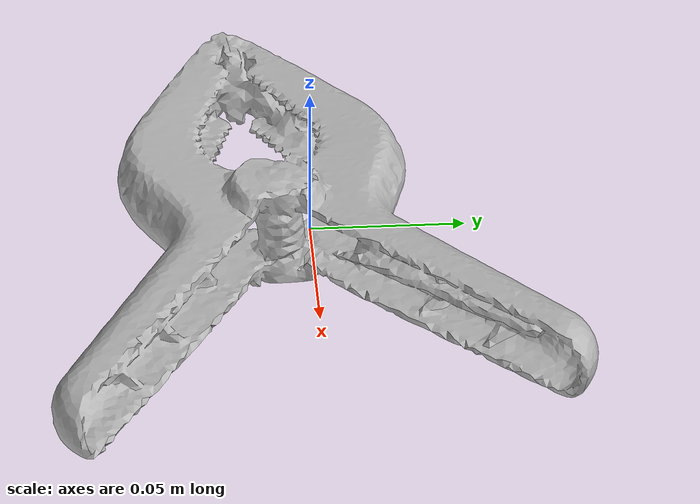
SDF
<?xml version="1.0" ?>
<sdf version="1.7">
<!--
This SDF file was automatically generated using a template modified
and authored by Jinjian Li. The moment of interia is not supposed to be changed.
-->
    <model name="obj_000020">
      <pose>0.0 0.0 0.0 0.0 0.0 0.0</pose>
      <link name="link">
        <inertial>
          <inertia>
           <ixx>0.00026745897752038125</ixx>
           <ixy>-2.3143490508574467e-05</ixy>
           <ixz>2.502884806658289e-07</ixz>
           <iyy>0.0004481439128038987</iyy>
           <iyz>-1.8155869915770907e-06</iyz>
           <izz>0.0006910495380677301</izz>
          </inertia>
          <mass>0.18185593560718089</mass>
        </inertial>
        <collision name="collision">
          <geometry>
            <mesh>
             <uri>obj_000020.obj</uri>
             <scale>1 1 1</scale>
            </mesh>
          </geometry>
        </collision>

        <visual name="visual">
          <geometry>
            <mesh>
             <uri>obj_000020.obj</uri>
             <scale>1 1 1</scale>
            </mesh>
          </geometry>
        </visual>
      </link>
    </model>
</sdf>
